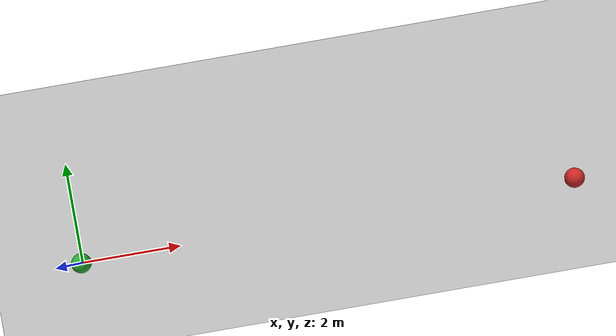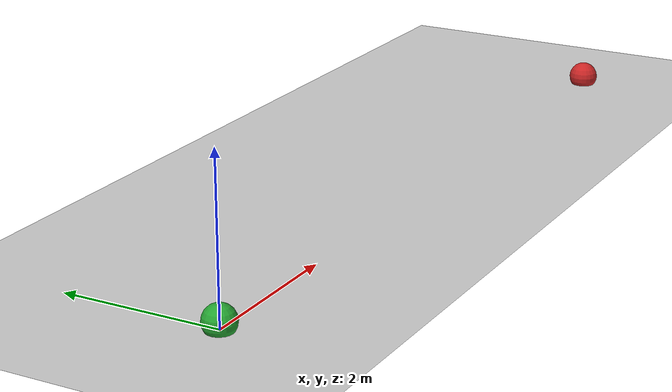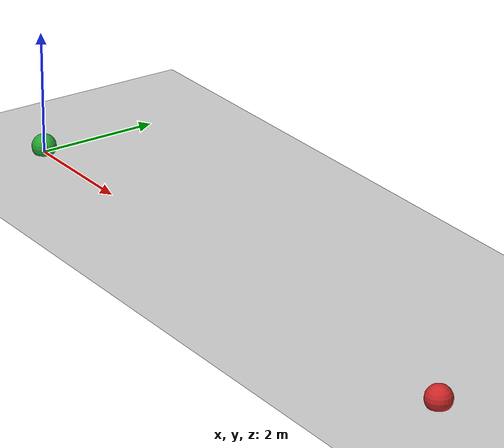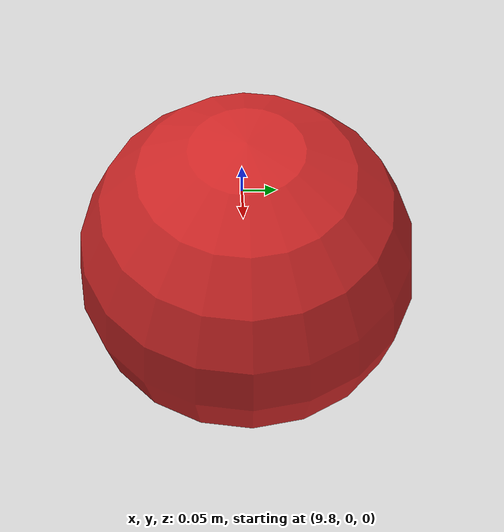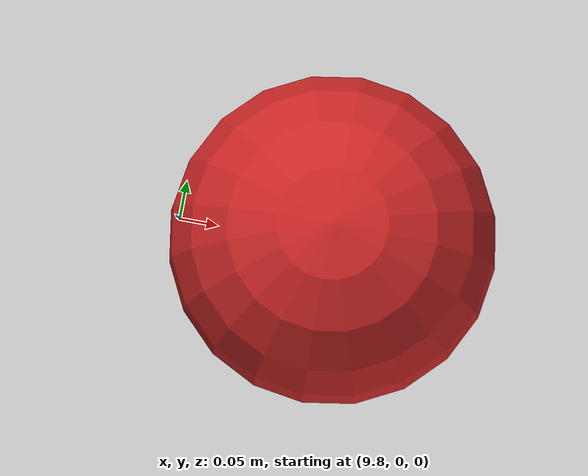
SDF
<?xml version="1.0" ?>
<sdf version="1.6">
  <world name="swarm_arena">
    <!-- Physics engine -->
    <physics name="default_physics" default="0" type="ode">
      <max_step_size>0.001</max_step_size>
      <real_time_factor>1.0</real_time_factor>
      <real_time_update_rate>1000</real_time_update_rate>
      <gravity>0 0 -9.81</gravity>
    </physics>

    <!-- Plugins -->
    <plugin name="gazebo_ros_state" filename="libgazebo_ros_state.so">
      <ros>
        <namespace>/gazebo</namespace>
      </ros>
      <update_rate>100.0</update_rate>
    </plugin>

    <!-- Scene -->
    <scene>
      <ambient>0.4 0.4 0.4 1</ambient>
      <background>0.7 0.7 0.7 1</background>
      <shadows>1</shadows>
    </scene>

    <!-- Lighting -->
    <light name="sun" type="directional">
      <cast_shadows>1</cast_shadows>
      <pose>0 0 10 0 0 0</pose>
      <diffuse>0.8 0.8 0.8 1</diffuse>
      <specular>0.2 0.2 0.2 1</specular>
      <attenuation>
        <range>1000</range>
        <constant>0.9</constant>
        <linear>0.01</linear>
        <quadratic>0.001</quadratic>
      </attenuation>
      <direction>-0.5 0.1 -0.9</direction>
    </light>

    <!-- Ground plane -->
    <model name="ground_plane">
      <static>true</static>
      <link name="link">
        <collision name="collision">
          <geometry>
            <plane>
              <normal>0 0 1</normal>
              <size>100 100</size>
            </plane>
          </geometry>
        </collision>
        <visual name="visual">
          <geometry>
            <plane>
              <normal>0 0 1</normal>
              <size>100 100</size>
            </plane>
          </geometry>
          <material>
            <script>
              <uri>file://media/materials/scripts/gazebo.material</uri>
              <name>Gazebo/Grey</name>
            </script>
          </material>
        </visual>
      </link>
    </model>

    <!-- Reference frames and markers -->
    <model name="origin_marker">
      <static>true</static>
      <pose>0 0 0.1 0 0 0</pose>
      <link name="link">
        <visual name="visual">
          <geometry>
            <sphere>
              <radius>0.2</radius>
            </sphere>
          </geometry>
          <material>
            <script>
              <uri>file://media/materials/scripts/gazebo.material</uri>
              <name>Gazebo/Green</name>
            </script>
          </material>
        </visual>
      </link>
    </model>

    <model name="destination_marker">
      <static>true</static>
      <pose>10 0 0.1 0 0 0</pose>
      <link name="link">
        <visual name="visual">
          <geometry>
            <sphere>
              <radius>0.2</radius>
            </sphere>
          </geometry>
          <material>
            <script>
              <uri>file://media/materials/scripts/gazebo.material</uri>
              <name>Gazebo/Red</name>
            </script>
          </material>
        </visual>
      </link>
    </model>

  </world>
</sdf>
